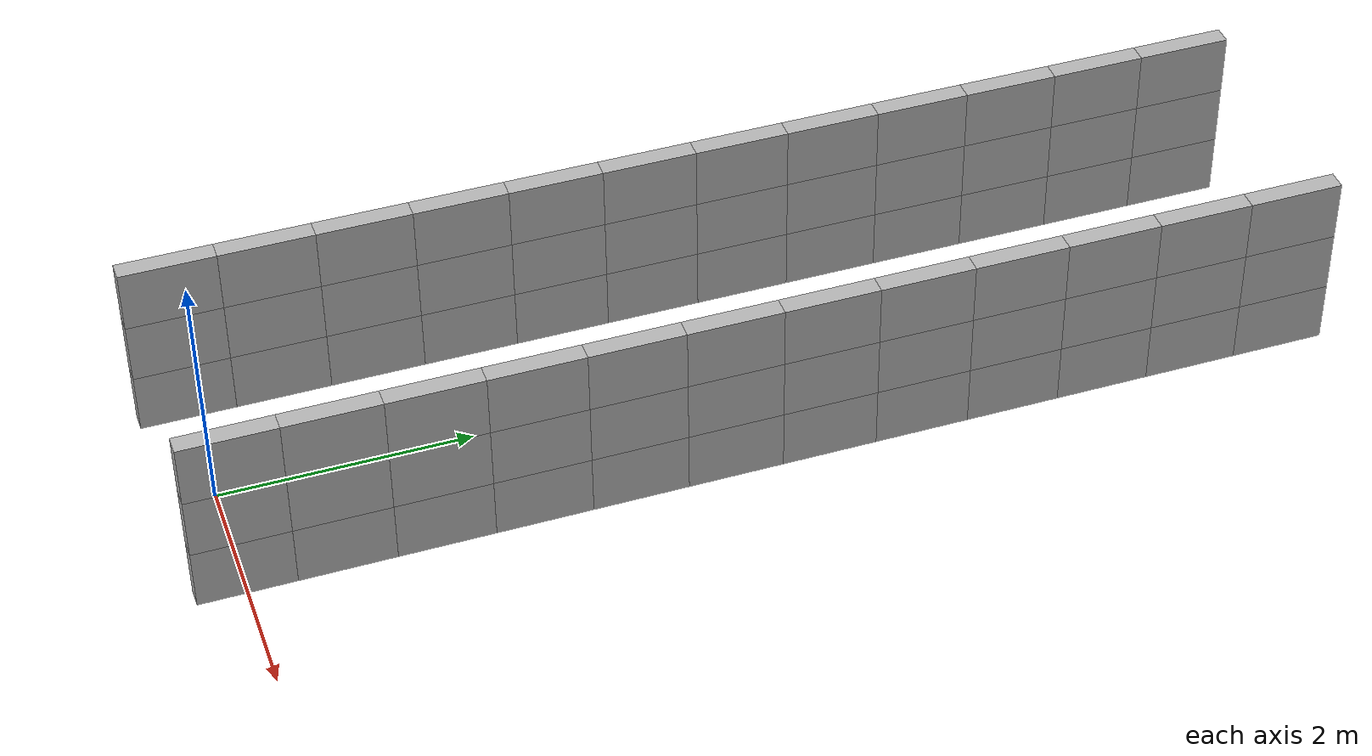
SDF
<sdf version="1.5">
 <world name="L_corridor">
  <include><uri>model://sun</uri></include>
  <include><uri>model://boxes_corridor</uri></include>
 </world>
</sdf>

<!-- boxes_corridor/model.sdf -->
<sdf version="1.5">
  <model name="boxes_corridor model">
    <pose>0 0 0 0 0 0</pose>
    <static>true</static>
    <!-- 1st row -->
    <link name="link_0">
      <collision name="collision_0">
        <pose>-1 0 1.25 0 0 1.57079633</pose>
        <geometry>
          <box>
            <size>0.75 0.15 0.5</size>
          </box>
        </geometry>
      </collision>
      <visual name='visual_0'>
        <pose>-1 0 1.25 0 0 1.57079633</pose>
        <geometry>
            <mesh>
              <uri>model://boxes_corridor/meshes/blue_circle_border.dae</uri>
            </mesh>
        </geometry>
      </visual>
    </link>

    <link name="link_1">
      <collision name="collision_1">
        <pose>-1 0 0.75 0 0 1.57079633</pose>
        <geometry>
          <box>
            <size>0.75 0.15 0.5</size>
          </box>
        </geometry>
      </collision>
      <visual name='visual_1'>
        <pose>-1 0 0.75 0 0 1.57079633</pose>
        <geometry>
            <mesh>
              <uri>model://boxes_corridor/meshes/red_circle_border.dae</uri>
            </mesh>
        </geometry>
      </visual>
    </link>

    <link name="link_2">
      <collision name="collision_2">
        <pose>-1 0 0.25 0 0 1.57079633</pose>
        <geometry>
          <box>
            <size>0.75 0.15 0.5</size>
          </box>
        </geometry>
      </collision>
      <visual name='visual_2'>
        <pose>-1 0 0.25 0 0 1.57079633</pose>
        <geometry>
            <mesh>
              <uri>model://boxes_corridor/meshes/green_circle_border.dae</uri>
            </mesh>
        </geometry>
      </visual>
    </link>

    <!-- 2nd row -->

    <link name="link_3">
      <collision name="collision_3">
        <pose>-1 0.75 0.25 0 0 1.57079633</pose>
        <geometry>
          <box>
            <size>0.75 0.15 0.5</size>
          </box>
        </geometry>
      </collision>
      <visual name='visual_3'>
        <pose>-1 0.75 0.25 0 0 1.57079633</pose>
        <geometry>
            <mesh>
              <uri>model://boxes_corridor/meshes/blue_circle_border.dae</uri>
            </mesh>
        </geometry>
      </visual>
    </link>

    <link name="link_4">
      <collision name="collision_4">
        <pose>-1 0.75 1.25 0 0 1.57079633</pose>
        <geometry>
          <box>
            <size>0.75 0.15 0.5</size>
          </box>
        </geometry>
      </collision>
      <visual name='visual_4'>
        <pose>-1 0.75 1.25 0 0 1.57079633</pose>
        <geometry>
            <mesh>
              <uri>model://boxes_corridor/meshes/red_circle_border.dae</uri>
            </mesh>
        </geometry>
      </visual>
    </link>

    <link name="link_5">
      <collision name="collision_5">
        <pose>-1 0.75 0.75 0 0 1.57079633</pose>
        <geometry>
          <box>
            <size>0.75 0.15 0.5</size>
          </box>
        </geometry>
      </collision>
      <visual name='visual_5'>
        <pose>-1 0.75 0.75 0 0 1.57079633</pose>
        <geometry>
            <mesh>
              <uri>model://boxes_corridor/meshes/green_circle_border.dae</uri>
            </mesh>
        </geometry>
      </visual>
    </link>

    <!-- 3rd row -->

    <link name="link_6">
      <collision name="collision_6">
        <pose>-1 1.5 0.75 0 0 1.57079633</pose>
        <geometry>
          <box>
            <size>0.75 0.15 0.5</size>
          </box>
        </geometry>
      </collision>
      <visual name='visual_6'>
        <pose>-1 1.5 0.75 0 0 1.57079633</pose>
        <geometry>
            <mesh>
              <uri>model://boxes_corridor/meshes/blue_circle_border.dae</uri>
            </mesh>
        </geometry>
      </visual>
    </link>

    <link name="link_7">
      <collision name="collision_7">
        <pose>-1 1.5 0.25 0 0 1.57079633</pose>
        <geometry>
          <box>
            <size>0.75 0.15 0.5</size>
          </box>
        </geometry>
      </collision>
      <visual name='visual_7'>
        <pose>-1 1.5 0.25 0 0 1.57079633</pose>
        <geometry>
            <mesh>
              <uri>model://boxes_corridor/meshes/red_circle_border.dae</uri>
            </mesh>
        </geometry>
      </visual>
    </link>

    <link name="link_8">
      <collision name="collision_8">
        <pose>-1 1.5 1.25 0 0 1.57079633</pose>
        <geometry>
          <box>
            <size>0.75 0.15 0.5</size>
          </box>
        </geometry>
      </collision>
      <visual name='visual_8'>
        <pose>-1 1.5 1.25 0 0 1.57079633</pose>
        <geometry>
            <mesh>
              <uri>model://boxes_corridor/meshes/green_circle_border.dae</uri>
            </mesh>
        </geometry>
      </visual>
    </link>

    <!-- 4th row -->

    <link name="link_9">
      <collision name="collision_9">
        <pose>-1 2.25 1.25 0 0 1.57079633</pose>
        <geometry>
          <box>
            <size>0.75 0.15 0.5</size>
          </box>
        </geometry>
      </collision>
      <visual name='visual_9'>
        <pose>-1 2.25 1.25 0 0 1.57079633</pose>
        <geometry>
            <mesh>
              <uri>model://boxes_corridor/meshes/blue_circle_border.dae</uri>
            </mesh>
        </geometry>
      </visual>
    </link>

    <link name="link_10">
      <collision name="collision_10">
        <pose>-1 2.25 0.75 0 0 1.57079633</pose>
        <geometry>
          <box>
            <size>0.75 0.15 0.5</size>
          </box>
        </geometry>
      </collision>
      <visual name='visual_10'>
        <pose>-1 2.25 0.75 0 0 1.57079633</pose>
        <geometry>
            <mesh>
              <uri>model://boxes_corridor/meshes/red_circle_border.dae</uri>
            </mesh>
        </geometry>
      </visual>
    </link>

    <link name="link_11">
      <collision name="collision_11">
        <pose>-1 2.25 0.25 0 0 1.57079633</pose>
        <geometry>
          <box>
            <size>0.75 0.15 0.5</size>
          </box>
        </geometry>
      </collision>
      <visual name='visual_11'>
        <pose>-1 2.25 0.25 0 0 1.57079633</pose>
        <geometry>
            <mesh>
              <uri>model://boxes_corridor/meshes/green_circle_border.dae</uri>
            </mesh>
        </geometry>
      </visual>
    </link>

    <!-- 5th row -->

    <link name="link_12">
      <collision name="collision_12">
        <pose>-1 3 0.25 0 0 1.57079633</pose>
        <geometry>
          <box>
            <size>0.75 0.15 0.5</size>
          </box>
        </geometry>
      </collision>
      <visual name='visual_12'>
        <pose>-1 3 0.25 0 0 1.57079633</pose>
        <geometry>
            <mesh>
              <uri>model://boxes_corridor/meshes/blue_circle_border.dae</uri>
            </mesh>
        </geometry>
      </visual>
    </link>

    <link name="link_13">
      <collision name="collision_13">
        <pose>-1 3 1.25 0 0 1.57079633</pose>
        <geometry>
          <box>
            <size>0.75 0.15 0.5</size>
          </box>
        </geometry>
      </collision>
      <visual name='visual_13'>
        <pose>-1 3 1.25 0 0 1.57079633</pose>
        <geometry>
            <mesh>
              <uri>model://boxes_corridor/meshes/red_circle_border.dae</uri>
            </mesh>
        </geometry>
      </visual>
    </link>

    <link name="link_14">
      <collision name="collision_14">
        <pose>-1 3 0.75 0 0 1.57079633</pose>
        <geometry>
          <box>
            <size>0.75 0.15 0.5</size>
          </box>
        </geometry>
      </collision>
      <visual name='visual_14'>
        <pose>-1 3 0.75 0 0 1.57079633</pose>
        <geometry>
            <mesh>
              <uri>model://boxes_corridor/meshes/green_circle_border.dae</uri>
            </mesh>
        </geometry>
      </visual>
    </link>

    <!-- 6 row -->

    <link name="link_15">
      <collision name="collision_15">
        <pose>-1 3.75 0.75 0 0 1.57079633</pose>
        <geometry>
          <box>
            <size>0.75 0.15 0.5</size>
          </box>
        </geometry>
      </collision>
      <visual name='visual_15'>
        <pose>-1 3.75 0.75 0 0 1.57079633</pose>
        <geometry>
            <mesh>
              <uri>model://boxes_corridor/meshes/blue_circle_border.dae</uri>
            </mesh>
        </geometry>
      </visual>
    </link>

    <link name="link_16">
      <collision name="collision_16">
        <pose>-1 3.75 0.25 0 0 1.57079633</pose>
        <geometry>
          <box>
            <size>0.75 0.15 0.5</size>
          </box>
        </geometry>
      </collision>
      <visual name='visual_16'>
        <pose>-1 3.75 0.25 0 0 1.57079633</pose>
        <geometry>
            <mesh>
              <uri>model://boxes_corridor/meshes/red_circle_border.dae</uri>
            </mesh>
        </geometry>
      </visual>
    </link>

    <link name="link_17">
      <collision name="collision_17">
        <pose>-1 3.75 1.25 0 0 1.57079633</pose>
        <geometry>
          <box>
            <size>0.75 0.15 0.5</size>
          </box>
        </geometry>
      </collision>
      <visual name='visual_17'>
        <pose>-1 3.75 1.25 0 0 1.57079633</pose>
        <geometry>
            <mesh>
              <uri>model://boxes_corridor/meshes/green_circle_border.dae</uri>
            </mesh>
        </geometry>
      </visual>
    </link>

    <!-- 7 row -->
    <link name="link_18">
      <collision name="collision_18">
        <pose>-1 4.5 1.25 0 0 1.57079633</pose>
        <geometry>
          <box>
            <size>0.75 0.15 0.5</size>
          </box>
        </geometry>
      </collision>
      <visual name='visual_18'>
        <pose>-1 4.5 1.25 0 0 1.57079633</pose>
        <geometry>
            <mesh>
              <uri>model://boxes_corridor/meshes/blue_circle_border.dae</uri>
            </mesh>
        </geometry>
      </visual>
    </link>

    <link name="link_19">
      <collision name="collision_19">
        <pose>-1 4.5 0.75 0 0 1.57079633</pose>
        <geometry>
          <box>
            <size>0.75 0.15 0.5</size>
          </box>
        </geometry>
      </collision>
      <visual name='visual_19'>
        <pose>-1 4.5 0.75 0 0 1.57079633</pose>
        <geometry>
            <mesh>
              <uri>model://boxes_corridor/meshes/red_circle_border.dae</uri>
            </mesh>
        </geometry>
      </visual>
    </link>

    <link name="link_20">
      <collision name="collision_20">
        <pose>-1 4.5 0.25 0 0 1.57079633</pose>
        <geometry>
          <box>
            <size>0.75 0.15 0.5</size>
          </box>
        </geometry>
      </collision>
      <visual name='visual_20'>
        <pose>-1 4.5 0.25 0 0 1.57079633</pose>
        <geometry>
            <mesh>
              <uri>model://boxes_corridor/meshes/green_circle_border.dae</uri>
            </mesh>
        </geometry>
      </visual>
    </link>

    <!-- 8 row -->

    <link name="link_21">
      <collision name="collision_21">
        <pose>-1 5.25 0.25 0 0 1.57079633</pose>
        <geometry>
          <box>
            <size>0.75 0.15 0.5</size>
          </box>
        </geometry>
      </collision>
      <visual name='visual_21'>
        <pose>-1 5.25 0.25 0 0 1.57079633</pose>
        <geometry>
            <mesh>
              <uri>model://boxes_corridor/meshes/blue_circle_border.dae</uri>
            </mesh>
        </geometry>
      </visual>
    </link>

    <link name="link_22">
      <collision name="collision_22">
        <pose>-1 5.25 1.25 0 0 1.57079633</pose>
        <geometry>
          <box>
            <size>0.75 0.15 0.5</size>
          </box>
        </geometry>
      </collision>
      <visual name='visual_22'>
        <pose>-1 5.25 1.25 0 0 1.57079633</pose>
        <geometry>
            <mesh>
              <uri>model://boxes_corridor/meshes/red_circle_border.dae</uri>
            </mesh>
        </geometry>
      </visual>
    </link>

    <link name="link_23">
      <collision name="collision_23">
        <pose>-1 5.25 0.75 0 0 1.57079633</pose>
        <geometry>
          <box>
            <size>0.75 0.15 0.5</size>
          </box>
        </geometry>
      </collision>
      <visual name='visual_23'>
        <pose>-1 5.25 0.75 0 0 1.57079633</pose>
        <geometry>
            <mesh>
              <uri>model://boxes_corridor/meshes/green_circle_border.dae</uri>
            </mesh>
        </geometry>
      </visual>
    </link>

    <!-- 9 row -->

    <link name="link_24">
      <collision name="collision_24">
        <pose>-1 6 0.75 0 0 1.57079633</pose>
        <geometry>
          <box>
            <size>0.75 0.15 0.5</size>
          </box>
        </geometry>
      </collision>
      <visual name='visual_24'>
        <pose>-1 6 0.75 0 0 1.57079633</pose>
        <geometry>
            <mesh>
              <uri>model://boxes_corridor/meshes/blue_circle_border.dae</uri>
            </mesh>
        </geometry>
      </visual>
    </link>

    <link name="link_25">
      <collision name="collision_25">
        <pose>-1 6 0.25 0 0 1.57079633</pose>
        <geometry>
          <box>
            <size>0.75 0.15 0.5</size>
          </box>
        </geometry>
      </collision>
      <visual name='visual_25'>
        <pose>-1 6 0.25 0 0 1.57079633</pose>
        <geometry>
            <mesh>
              <uri>model://boxes_corridor/meshes/red_circle_border.dae</uri>
            </mesh>
        </geometry>
      </visual>
    </link>

    <link name="link_26">
      <collision name="collision_26">
        <pose>-1 6 1.25 0 0 1.57079633</pose>
        <geometry>
          <box>
            <size>0.75 0.15 0.5</size>
          </box>
        </geometry>
      </collision>
      <visual name='visual_26'>
        <pose>-1 6 1.25 0 0 1.57079633</pose>
        <geometry>
            <mesh>
              <uri>model://boxes_corridor/meshes/green_circle_border.dae</uri>
            </mesh>
        </geometry>
      </visual>
    </link>

    <!-- 10 row -->

    <link name="link_27">
      <collision name="collision_27">
        <pose>-1 6.75 1.25 0 0 1.57079633</pose>
        <geometry>
          <box>
            <size>0.75 0.15 0.5</size>
          </box>
        </geometry>
      </collision>
      <visual name='visual_27'>
        <pose>-1 6.75 1.25 0 0 1.57079633</pose>
        <geometry>
            <mesh>
              <uri>model://boxes_corridor/meshes/blue_circle_border.dae</uri>
            </mesh>
        </geometry>
      </visual>
    </link>

    <link name="link_28">
      <collision name="collision_28">
        <pose>-1 6.75 0.75 0 0 1.57079633</pose>
        <geometry>
          <box>
            <size>0.75 0.15 0.5</size>
          </box>
        </geometry>
      </collision>
      <visual name='visual_28'>
        <pose>-1 6.75 0.75 0 0 1.57079633</pose>
        <geometry>
            <mesh>
              <uri>model://boxes_corridor/meshes/red_circle_border.dae</uri>
            </mesh>
        </geometry>
      </visual>
    </link>

    <link name="link_29">
      <collision name="collision_29">
        <pose>-1 6.75 0.25 0 0 1.57079633</pose>
        <geometry>
          <box>
            <size>0.75 0.15 0.5</size>
          </box>
        </geometry>
      </collision>
      <visual name='visual_29'>
        <pose>-1 6.75 0.25 0 0 1.57079633</pose>
        <geometry>
            <mesh>
              <uri>model://boxes_corridor/meshes/green_circle_border.dae</uri>
            </mesh>
        </geometry>
      </visual>
    </link>

    <!-- 11 row -->

    <link name="link_30">
      <collision name="collision_30">
        <pose>-1 7.5 0.25 0 0 1.57079633</pose>
        <geometry>
          <box>
            <size>0.75 0.15 0.5</size>
          </box>
        </geometry>
      </collision>
      <visual name='visual_30'>
        <pose>-1 7.5 0.25 0 0 1.57079633</pose>
        <geometry>
            <mesh>
              <uri>model://boxes_corridor/meshes/blue_circle_border.dae</uri>
            </mesh>
        </geometry>
      </visual>
    </link>

    <link name="link_31">
      <collision name="collision_31">
        <pose>-1 7.5 1.25 0 0 1.57079633</pose>
        <geometry>
          <box>
            <size>0.75 0.15 0.5</size>
          </box>
        </geometry>
      </collision>
      <visual name='visual_31'>
        <pose>-1 7.5 1.25 0 0 1.57079633</pose>
        <geometry>
            <mesh>
              <uri>model://boxes_corridor/meshes/red_circle_border.dae</uri>
            </mesh>
        </geometry>
      </visual>
    </link>

    <link name="link_32">
      <collision name="collision_32">
        <pose>-1 7.5 0.75 0 0 1.57079633</pose>
        <geometry>
          <box>
            <size>0.75 0.15 0.5</size>
          </box>
        </geometry>
      </collision>
      <visual name='visual_32'>
        <pose>-1 7.5 0.75 0 0 1.57079633</pose>
        <geometry>
            <mesh>
              <uri>model://boxes_corridor/meshes/green_circle_border.dae</uri>
            </mesh>
        </geometry>
      </visual>
    </link>

    <!-- 12 row -->

    <link name="link_33">
      <collision name="collision_33">
        <pose>-1 8.25 0.75 0 0 1.57079633</pose>
        <geometry>
          <box>
            <size>0.75 0.15 0.5</size>
          </box>
        </geometry>
      </collision>
      <visual name='visual_33'>
        <pose>-1 8.25 0.75 0 0 1.57079633</pose>
        <geometry>
            <mesh>
              <uri>model://boxes_corridor/meshes/blue_circle_border.dae</uri>
            </mesh>
        </geometry>
      </visual>
    </link>

    <link name="link_34">
      <collision name="collision_34">
        <pose>-1 8.25 0.25 0 0 1.57079633</pose>
        <geometry>
          <box>
            <size>0.75 0.15 0.5</size>
          </box>
        </geometry>
      </collision>
      <visual name='visual_34'>
        <pose>-1 8.25 0.25 0 0 1.57079633</pose>
        <geometry>
            <mesh>
              <uri>model://boxes_corridor/meshes/red_circle_border.dae</uri>
            </mesh>
        </geometry>
      </visual>
    </link>

    <link name="link_35">
      <collision name="collision_35">
        <pose>-1 8.25 1.25 0 0 1.57079633</pose>
        <geometry>
          <box>
            <size>0.75 0.15 0.5</size>
          </box>
        </geometry>
      </collision>
      <visual name='visual_35'>
        <pose>-1 8.25 1.25 0 0 1.57079633</pose>
        <geometry>
            <mesh>
              <uri>model://boxes_corridor/meshes/green_circle_border.dae</uri>
            </mesh>
        </geometry>
      </visual>
    </link>

    <!-- other side -->

        <!-- 1st row -->
    <link name="link_0_0">
      <collision name="collision_0_0">
        <pose>1 0 1.25 0 0 -1.57079633</pose>
        <geometry>
          <box>
            <size>0.75 0.15 0.5</size>
          </box>
        </geometry>
      </collision>
      <visual name='visual_0_0'>
        <pose>1 0 1.25 0 0 -1.57079633</pose>
        <geometry>
            <mesh>
              <uri>model://boxes_corridor/meshes/blue_circle_border.dae</uri>
            </mesh>
        </geometry>
      </visual>
    </link>

    <link name="link_1_0">
      <collision name="collision_1_0">
        <pose>1 0 0.75 0 0 -1.57079633</pose>
        <geometry>
          <box>
            <size>0.75 0.15 0.5</size>
          </box>
        </geometry>
      </collision>
      <visual name='visual_1_0'>
        <pose>1 0 0.75 0 0 -1.57079633</pose>
        <geometry>
            <mesh>
              <uri>model://boxes_corridor/meshes/red_circle_border.dae</uri>
            </mesh>
        </geometry>
      </visual>
    </link>

    <link name="link_2_0">
      <collision name="collision_2_0">
        <pose>1 0 0.25 0 0 -1.57079633</pose>
        <geometry>
          <box>
            <size>0.75 0.15 0.5</size>
          </box>
        </geometry>
      </collision>
      <visual name='visual_2_0'>
        <pose>1 0 0.25 0 0 -1.57079633</pose>
        <geometry>
            <mesh>
              <uri>model://boxes_corridor/meshes/green_circle_border.dae</uri>
            </mesh>
        </geometry>
      </visual>
    </link>

    <!-- 2nd row -->

    <link name="link_3_0">
      <collision name="collision_3_0">
        <pose>1 0.75 0.25 0 0 -1.57079633</pose>
        <geometry>
          <box>
            <size>0.75 0.15 0.5</size>
          </box>
        </geometry>
      </collision>
      <visual name='visual_3_0'>
        <pose>1 0.75 0.25 0 0 -1.57079633</pose>
        <geometry>
            <mesh>
              <uri>model://boxes_corridor/meshes/blue_circle_border.dae</uri>
            </mesh>
        </geometry>
      </visual>
    </link>

    <link name="link_4_0">
      <collision name="collision_4_0">
        <pose>1 0.75 1.25 0 0 -1.57079633</pose>
        <geometry>
          <box>
            <size>0.75 0.15 0.5</size>
          </box>
        </geometry>
      </collision>
      <visual name='visual_4_0'>
        <pose>1 0.75 1.25 0 0 -1.57079633</pose>
        <geometry>
            <mesh>
              <uri>model://boxes_corridor/meshes/red_circle_border.dae</uri>
            </mesh>
        </geometry>
      </visual>
    </link>

    <link name="link_5_0">
      <collision name="collision_5_0">
        <pose>1 0.75 0.75 0 0 -1.57079633</pose>
        <geometry>
          <box>
            <size>0.75 0.15 0.5</size>
          </box>
        </geometry>
      </collision>
      <visual name='visual_5_0'>
        <pose>1 0.75 0.75 0 0 -1.57079633</pose>
        <geometry>
            <mesh>
              <uri>model://boxes_corridor/meshes/green_circle_border.dae</uri>
            </mesh>
        </geometry>
      </visual>
    </link>

    <!-- 3rd row -->

    <link name="link_6_0">
      <collision name="collision_6_0">
        <pose>1 1.5 0.75 0 0 -1.57079633</pose>
        <geometry>
          <box>
            <size>0.75 0.15 0.5</size>
          </box>
        </geometry>
      </collision>
      <visual name='visual_6_0'>
        <pose>1 1.5 0.75 0 0 -1.57079633</pose>
        <geometry>
            <mesh>
              <uri>model://boxes_corridor/meshes/blue_circle_border.dae</uri>
            </mesh>
        </geometry>
      </visual>
    </link>

    <link name="link_7_0">
      <collision name="collision_7_0">
        <pose>1 1.5 0.25 0 0 -1.57079633</pose>
        <geometry>
          <box>
            <size>0.75 0.15 0.5</size>
          </box>
        </geometry>
      </collision>
      <visual name='visual_7_0'>
        <pose>1 1.5 0.25 0 0 -1.57079633</pose>
        <geometry>
            <mesh>
              <uri>model://boxes_corridor/meshes/red_circle_border.dae</uri>
            </mesh>
        </geometry>
      </visual>
    </link>

    <link name="link_8_0">
      <collision name="collision_8_0">
        <pose>1 1.5 1.25 0 0 -1.57079633</pose>
        <geometry>
          <box>
            <size>0.75 0.15 0.5</size>
          </box>
        </geometry>
      </collision>
      <visual name='visual_8_0'>
        <pose>1 1.5 1.25 0 0 -1.57079633</pose>
        <geometry>
            <mesh>
              <uri>model://boxes_corridor/meshes/green_circle_border.dae</uri>
            </mesh>
        </geometry>
      </visual>
    </link>

    <!-- 4th row -->

    <link name="link_9_0">
      <collision name="collision_9_0">
        <pose>1 2.25 1.25 0 0 -1.57079633</pose>
        <geometry>
          <box>
            <size>0.75 0.15 0.5</size>
          </box>
        </geometry>
      </collision>
      <visual name='visual_9_0'>
        <pose>1 2.25 1.25 0 0 -1.57079633</pose>
        <geometry>
            <mesh>
              <uri>model://boxes_corridor/meshes/blue_circle_border.dae</uri>
            </mesh>
        </geometry>
      </visual>
    </link>

    <link name="link_10_0">
      <collision name="collision_10_0">
        <pose>1 2.25 0.75 0 0 -1.57079633</pose>
        <geometry>
          <box>
            <size>0.75 0.15 0.5</size>
          </box>
        </geometry>
      </collision>
      <visual name='visual_10_0'>
        <pose>1 2.25 0.75 0 0 -1.57079633</pose>
        <geometry>
            <mesh>
              <uri>model://boxes_corridor/meshes/red_circle_border.dae</uri>
            </mesh>
        </geometry>
      </visual>
    </link>

    <link name="link_11_0">
      <collision name="collision_11_0">
        <pose>1 2.25 0.25 0 0 -1.57079633</pose>
        <geometry>
          <box>
            <size>0.75 0.15 0.5</size>
          </box>
        </geometry>
      </collision>
      <visual name='visual_11_0'>
        <pose>1 2.25 0.25 0 0 -1.57079633</pose>
        <geometry>
            <mesh>
              <uri>model://boxes_corridor/meshes/green_circle_border.dae</uri>
            </mesh>
        </geometry>
      </visual>
    </link>

    <!-- 5th row -->

    <link name="link_12_0">
      <collision name="collision_12_0">
        <pose>1 3 0.25 0 0 -1.57079633</pose>
        <geometry>
          <box>
            <size>0.75 0.15 0.5</size>
          </box>
        </geometry>
      </collision>
      <visual name='visual_12_0'>
        <pose>1 3 0.25 0 0 -1.57079633</pose>
        <geometry>
            <mesh>
              <uri>model://boxes_corridor/meshes/blue_circle_border.dae</uri>
            </mesh>
        </geometry>
      </visual>
    </link>

    <link name="link_13_0">
      <collision name="collision_13_0">
        <pose>1 3 1.25 0 0 -1.57079633</pose>
        <geometry>
          <box>
            <size>0.75 0.15 0.5</size>
          </box>
        </geometry>
      </collision>
      <visual name='visual_13_0'>
        <pose>1 3 1.25 0 0 -1.57079633</pose>
        <geometry>
            <mesh>
              <uri>model://boxes_corridor/meshes/red_circle_border.dae</uri>
            </mesh>
        </geometry>
      </visual>
    </link>

    <link name="link_14_0">
      <collision name="collision_14_0">
        <pose>1 3 0.75 0 0 -1.57079633</pose>
        <geometry>
          <box>
            <size>0.75 0.15 0.5</size>
          </box>
        </geometry>
      </collision>
      <visual name='visual_14_0'>
        <pose>1 3 0.75 0 0 -1.57079633</pose>
        <geometry>
            <mesh>
              <uri>model://boxes_corridor/meshes/green_circle_border.dae</uri>
            </mesh>
        </geometry>
      </visual>
    </link>

    <!-- 6 row -->

    <link name="link_15_0">
      <collision name="collision_15_0">
        <pose>1 3.75 0.75 0 0 -1.57079633</pose>
        <geometry>
          <box>
            <size>0.75 0.15 0.5</size>
          </box>
        </geometry>
      </collision>
      <visual name='visual_15_0'>
        <pose>1 3.75 0.75 0 0 -1.57079633</pose>
        <geometry>
            <mesh>
              <uri>model://boxes_corridor/meshes/blue_circle_border.dae</uri>
            </mesh>
        </geometry>
      </visual>
    </link>

    <link name="link_16_0">
      <collision name="collision_16_0">
        <pose>1 3.75 0.25 0 0 -1.57079633</pose>
        <geometry>
          <box>
            <size>0.75 0.15 0.5</size>
          </box>
        </geometry>
      </collision>
      <visual name='visual_16_0'>
        <pose>1 3.75 0.25 0 0 -1.57079633</pose>
        <geometry>
            <mesh>
              <uri>model://boxes_corridor/meshes/red_circle_border.dae</uri>
            </mesh>
        </geometry>
      </visual>
    </link>

    <link name="link_17_0">
      <collision name="collision_17_0">
        <pose>1 3.75 1.25 0 0 -1.57079633</pose>
        <geometry>
          <box>
            <size>0.75 0.15 0.5</size>
          </box>
        </geometry>
      </collision>
      <visual name='visual_17_0'>
        <pose>1 3.75 1.25 0 0 -1.57079633</pose>
        <geometry>
            <mesh>
              <uri>model://boxes_corridor/meshes/green_circle_border.dae</uri>
            </mesh>
        </geometry>
      </visual>
    </link>

    <!-- 7 row -->
    <link name="link_18_0">
      <collision name="collision_18_0">
        <pose>1 4.5 1.25 0 0 -1.57079633</pose>
        <geometry>
          <box>
            <size>0.75 0.15 0.5</size>
          </box>
        </geometry>
      </collision>
      <visual name='visual_18_0'>
        <pose>1 4.5 1.25 0 0 -1.57079633</pose>
        <geometry>
            <mesh>
              <uri>model://boxes_corridor/meshes/blue_circle_border.dae</uri>
            </mesh>
        </geometry>
      </visual>
    </link>

    <link name="link_19_0">
      <collision name="collision_19_0">
        <pose>1 4.5 0.75 0 0 -1.57079633</pose>
        <geometry>
          <box>
            <size>0.75 0.15 0.5</size>
          </box>
        </geometry>
      </collision>
      <visual name='visual_19_0'>
        <pose>1 4.5 0.75 0 0 -1.57079633</pose>
        <geometry>
            <mesh>
              <uri>model://boxes_corridor/meshes/red_circle_border.dae</uri>
            </mesh>
        </geometry>
      </visual>
    </link>

    <link name="link_20_0">
      <collision name="collision_20_0">
        <pose>1 4.5 0.25 0 0 -1.57079633</pose>
        <geometry>
          <box>
            <size>0.75 0.15 0.5</size>
          </box>
        </geometry>
      </collision>
      <visual name='visual_20_0'>
        <pose>1 4.5 0.25 0 0 -1.57079633</pose>
        <geometry>
            <mesh>
              <uri>model://boxes_corridor/meshes/green_circle_border.dae</uri>
            </mesh>
        </geometry>
      </visual>
    </link>

    <!-- 8 row -->

    <link name="link_21_0">
      <collision name="collision_21_0">
        <pose>1 5.25 0.25 0 0 -1.57079633</pose>
        <geometry>
          <box>
            <size>0.75 0.15 0.5</size>
          </box>
        </geometry>
      </collision>
      <visual name='visual_21_0'>
        <pose>1 5.25 0.25 0 0 -1.57079633</pose>
        <geometry>
            <mesh>
              <uri>model://boxes_corridor/meshes/blue_circle_border.dae</uri>
            </mesh>
        </geometry>
      </visual>
    </link>

    <link name="link_22_0">
      <collision name="collision_22_0">
        <pose>1 5.25 1.25 0 0 -1.57079633</pose>
        <geometry>
          <box>
            <size>0.75 0.15 0.5</size>
          </box>
        </geometry>
      </collision>
      <visual name='visual_22_0'>
        <pose>1 5.25 1.25 0 0 -1.57079633</pose>
        <geometry>
            <mesh>
              <uri>model://boxes_corridor/meshes/red_circle_border.dae</uri>
            </mesh>
        </geometry>
      </visual>
    </link>

    <link name="link_23_0">
      <collision name="collision_23_0">
        <pose>1 5.25 0.75 0 0 -1.57079633</pose>
        <geometry>
          <box>
            <size>0.75 0.15 0.5</size>
          </box>
        </geometry>
      </collision>
      <visual name='visual_23_0'>
        <pose>1 5.25 0.75 0 0 -1.57079633</pose>
        <geometry>
            <mesh>
              <uri>model://boxes_corridor/meshes/green_circle_border.dae</uri>
            </mesh>
        </geometry>
      </visual>
    </link>

    <!-- 9 row -->

    <link name="link_24_0">
      <collision name="collision_24_0">
        <pose>1 6 0.75 0 0 -1.57079633</pose>
        <geometry>
          <box>
            <size>0.75 0.15 0.5</size>
          </box>
        </geometry>
      </collision>
      <visual name='visual_24_0'>
        <pose>1 6 0.75 0 0 -1.57079633</pose>
        <geometry>
            <mesh>
              <uri>model://boxes_corridor/meshes/blue_circle_border.dae</uri>
            </mesh>
        </geometry>
      </visual>
    </link>

    <link name="link_25_0">
      <collision name="collision_25_0">
        <pose>1 6 0.25 0 0 -1.57079633</pose>
        <geometry>
          <box>
            <size>0.75 0.15 0.5</size>
          </box>
        </geometry>
      </collision>
      <visual name='visual_25_0'>
        <pose>1 6 0.25 0 0 -1.57079633</pose>
        <geometry>
            <mesh>
              <uri>model://boxes_corridor/meshes/red_circle_border.dae</uri>
            </mesh>
        </geometry>
      </visual>
    </link>

    <link name="link_26_0">
      <collision name="collision_26_0">
        <pose>1 6 1.25 0 0 -1.57079633</pose>
        <geometry>
          <box>
            <size>0.75 0.15 0.5</size>
          </box>
        </geometry>
      </collision>
      <visual name='visual_26_0'>
        <pose>1 6 1.25 0 0 -1.57079633</pose>
        <geometry>
            <mesh>
              <uri>model://boxes_corridor/meshes/green_circle_border.dae</uri>
            </mesh>
        </geometry>
      </visual>
    </link>

    <!-- 10 row -->

    <link name="link_27_0">
      <collision name="collision_27_0">
        <pose>1 6.75 1.25 0 0 -1.57079633</pose>
        <geometry>
          <box>
            <size>0.75 0.15 0.5</size>
          </box>
        </geometry>
      </collision>
      <visual name='visual_27_0'>
        <pose>1 6.75 1.25 0 0 -1.57079633</pose>
        <geometry>
            <mesh>
              <uri>model://boxes_corridor/meshes/blue_circle_border.dae</uri>
            </mesh>
        </geometry>
      </visual>
    </link>

    <link name="link_28_0">
      <collision name="collision_28_0">
        <pose>1 6.75 0.75 0 0 -1.57079633</pose>
        <geometry>
          <box>
            <size>0.75 0.15 0.5</size>
          </box>
        </geometry>
      </collision>
      <visual name='visual_28_0'>
        <pose>1 6.75 0.75 0 0 -1.57079633</pose>
        <geometry>
            <mesh>
              <uri>model://boxes_corridor/meshes/red_circle_border.dae</uri>
            </mesh>
        </geometry>
      </visual>
    </link>

    <link name="link_29_0">
      <collision name="collision_29_0">
        <pose>1 6.75 0.25 0 0 -1.57079633</pose>
        <geometry>
          <box>
            <size>0.75 0.15 0.5</size>
          </box>
        </geometry>
      </collision>
      <visual name='visual_29_0'>
        <pose>1 6.75 0.25 0 0 -1.57079633</pose>
        <geometry>
            <mesh>
              <uri>model://boxes_corridor/meshes/green_circle_border.dae</uri>
            </mesh>
        </geometry>
      </visual>
    </link>

    <!-- 11 row -->

    <link name="link_30_0">
      <collision name="collision_30_0">
        <pose>1 7.5 0.25 0 0 -1.57079633</pose>
        <geometry>
          <box>
            <size>0.75 0.15 0.5</size>
          </box>
        </geometry>
      </collision>
      <visual name='visual_30_0'>
        <pose>1 7.5 0.25 0 0 -1.57079633</pose>
        <geometry>
            <mesh>
              <uri>model://boxes_corridor/meshes/blue_circle_border.dae</uri>
            </mesh>
        </geometry>
      </visual>
    </link>

    <link name="link_31_0">
      <collision name="collision_31_0">
        <pose>1 7.5 1.25 0 0 -1.57079633</pose>
        <geometry>
          <box>
            <size>0.75 0.15 0.5</size>
          </box>
        </geometry>
      </collision>
      <visual name='visual_31_0'>
        <pose>1 7.5 1.25 0 0 -1.57079633</pose>
        <geometry>
            <mesh>
              <uri>model://boxes_corridor/meshes/red_circle_border.dae</uri>
            </mesh>
        </geometry>
      </visual>
    </link>

    <link name="link_32_0">
      <collision name="collision_32_0">
        <pose>1 7.5 0.75 0 0 -1.57079633</pose>
        <geometry>
          <box>
            <size>0.75 0.15 0.5</size>
          </box>
        </geometry>
      </collision>
      <visual name='visual_32_0'>
        <pose>1 7.5 0.75 0 0 -1.57079633</pose>
        <geometry>
            <mesh>
              <uri>model://boxes_corridor/meshes/green_circle_border.dae</uri>
            </mesh>
        </geometry>
      </visual>
    </link>

    <!-- 12 row -->

    <link name="link_33_0">
      <collision name="collision_33_0">
        <pose>1 8.25 0.75 0 0 -1.57079633</pose>
        <geometry>
          <box>
            <size>0.75 0.15 0.5</size>
          </box>
        </geometry>
      </collision>
      <visual name='visual_33_0'>
        <pose>1 8.25 0.75 0 0 -1.57079633</pose>
        <geometry>
            <mesh>
              <uri>model://boxes_corridor/meshes/blue_circle_border.dae</uri>
            </mesh>
        </geometry>
      </visual>
    </link>

    <link name="link_34_0">
      <collision name="collision_34_0">
        <pose>1 8.25 0.25 0 0 -1.57079633</pose>
        <geometry>
          <box>
            <size>0.75 0.15 0.5</size>
          </box>
        </geometry>
      </collision>
      <visual name='visual_34_0'>
        <pose>1 8.25 0.25 0 0 -1.57079633</pose>
        <geometry>
            <mesh>
              <uri>model://boxes_corridor/meshes/red_circle_border.dae</uri>
            </mesh>
        </geometry>
      </visual>
    </link>

    <link name="link_35_0">
      <collision name="collision_35_0">
        <pose>1 8.25 1.25 0 0 -1.57079633</pose>
        <geometry>
          <box>
            <size>0.75 0.15 0.5</size>
          </box>
        </geometry>
      </collision>
      <visual name='visual_35_0'>
        <pose>1 8.25 1.25 0 0 -1.57079633</pose>
        <geometry>
            <mesh>
              <uri>model://boxes_corridor/meshes/green_circle_border.dae</uri>
            </mesh>
        </geometry>
      </visual>
    </link>

  </model>
</sdf>
